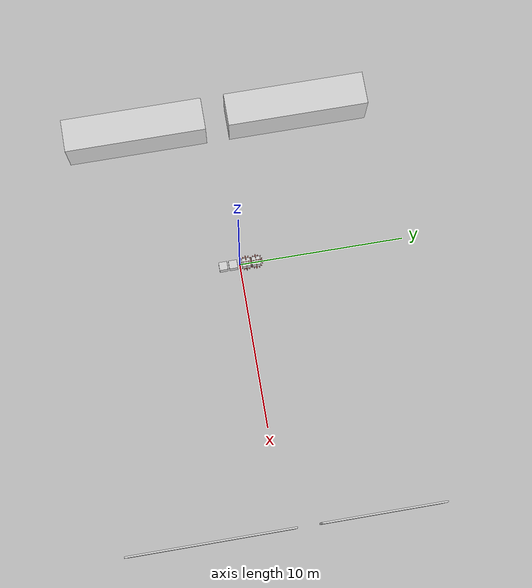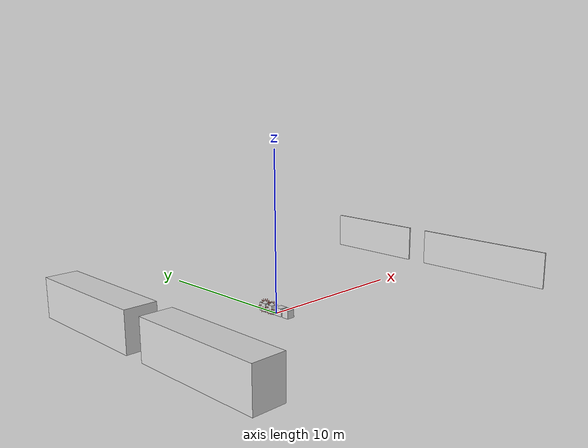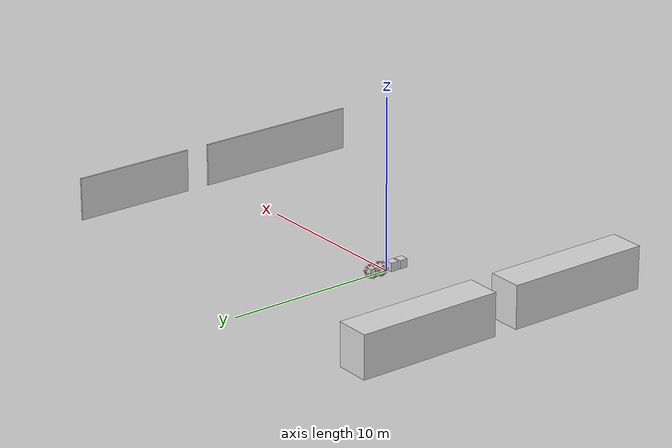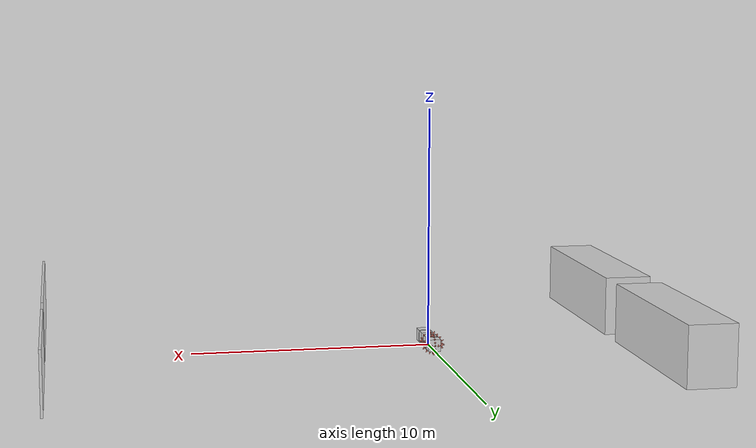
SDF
<?xml version="1.0" ?>
<sdf version="1.6">
  <model name="trap_b_1_n">
    <static>true</static>
    <include>
      <name>b_r</name>
      <uri>model://vis_cue_normal</uri>
      <pose>0 -1 0.25 0 0 0</pose>
    </include>
    <include>
      <name>attract_cue_1</name>
      <uri>model://vis_cue_normal</uri>
      <pose>0 -0.4 0.25 0 0 0</pose>
    </include>
    <include>
      <name>b_l</name>
      <uri>model://vis_cue_repel</uri>
      <pose>0 1 0.25 0 0 0</pose>
    </include>
    <include>
      <name>repel_cue_3</name>
      <uri>model://vis_cue_repel</uri>
      <pose>0 0.4 0.25 0 0 0</pose>
    </include>

    <include>
      <name>gate_m_start</name>
      <uri>model://study_track_gate_m_2</uri>
      <pose>0 0 0 0 0 0</pose>
    </include>

    <include>
      <name>gate_l_end</name>
      <uri>model://study_track_gate_l</uri>
      <pose>19 0 0 0 0 0</pose>
    </include>

  </model>
</sdf>

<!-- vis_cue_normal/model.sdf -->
<sdf version="1.6">
  <model name="vis_cue_normal">
    <static>false</static>
    <pose>0 0 0.25 0 0 0</pose>
    <link name='vis_cue_normal'>
      <inertial>
        <mass>1</mass>
        <inertia>
          <ixx>0.166667</ixx>
          <ixy>0</ixy>
          <ixz>0</ixz>
          <iyy>0.166667</iyy>
          <iyz>0</iyz>
          <izz>0.166667</izz>
        </inertia>
      </inertial>
      <collision name='collision'>
        <geometry>
          <box>
            <size>0.5 0.5 0.5</size>
          </box>
        </geometry>
        <max_contacts>10</max_contacts>
        <surface>
          <contact>
            <ode/>
          </contact>
          <bounce/>
          <friction>
            <torsional>
              <ode/>
            </torsional>
            <ode/>
          </friction>
        </surface>
      </collision>
      <visual name='box_visual'>
        <geometry>
          <box>
            <size>0.5 0.5 0.5</size>
          </box>
        </geometry>
        <material>
          <ambient>0.85 0.85 0.85 1</ambient>
          <diffuse>0.85 0.85 0.85 1</diffuse>
          <specular>0.15 0.15 0.15 1</specular>
          <emissive>0 0 0 0</emissive>
        </material>
      </visual>
      <self_collide>0</self_collide>
      <kinematic>0</kinematic>
    </link>
  </model>
</sdf>

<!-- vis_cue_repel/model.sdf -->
<sdf version="1.6">
  <model name="vis_cue_repel">
    <static>false</static>
    <pose>0 0 0.25 0 0 0</pose>
    <link name='vis_cue_repel'>
      <inertial>
        <mass>1</mass>
        <inertia>
          <ixx>0.166667</ixx>
          <ixy>0</ixy>
          <ixz>0</ixz>
          <iyy>0.166667</iyy>
          <iyz>0</iyz>
          <izz>0.166667</izz>
        </inertia>
      </inertial>
      <collision name='collision'>
        <geometry>
          <box>
            <size>0.5 0.5 0.5</size>
          </box>
        </geometry>
        <max_contacts>10</max_contacts>
        <surface>
          <contact>
            <ode/>
          </contact>
          <bounce/>
          <friction>
            <torsional>
              <ode/>
            </torsional>
            <ode/>
          </friction>
        </surface>
      </collision>
      <visual name='box_visual'>
        <geometry>
          <box>
            <size>0.5 0.5 0.5</size>
          </box>
        </geometry>
        <material>
          <ambient>0.85 0.85 0.85 1</ambient>
          <diffuse>0.85 0.85 0.85 1</diffuse>
          <specular>0.15 0.15 0.15 1</specular>
          <emissive>0 0 0 0</emissive>
        </material>
      </visual>
      <visual name='cue_visual_1'>
        <pose>0 0 0 1.5708 0 1.5708</pose>
        <geometry>
          <mesh>
            <uri>model://vis_cue_repel/meshes/repelling_cue.stl</uri>
            <scale>0.36 0.36 0.36</scale>
          </mesh>
        </geometry>
        <material>
          <ambient>1 0.3 0.2 0.6</ambient>
          <diffuse>1 0.3 0.2 0.6</diffuse>
          <specular>1 0.3 0.2 0.7</specular>
          <emissive>0.5 0 0 0.1</emissive>
        </material>
      </visual>
      <visual name='cue_visual_2'>
        <pose>0 0 0 1.5708 0 0</pose>
        <geometry>
          <mesh>
            <uri>model://vis_cue_repel/meshes/repelling_cue.stl</uri>
            <scale>0.36 0.36 0.36</scale>
          </mesh>
        </geometry>
        <material>
          <ambient>1 0.3 0.2 0.6</ambient>
          <diffuse>1 0.3 0.2 0.6</diffuse>
          <specular>1 0.3 0.2 0.7</specular>
          <emissive>0.5 0 0 0.1</emissive>
        </material>
      </visual>
      <visual name='cue_visual_3'>
        <pose>0 0 0 0 0 0</pose>
        <geometry>
          <mesh>
            <uri>model://vis_cue_repel/meshes/repelling_cue.stl</uri>
            <scale>0.36 0.36 0.36</scale>
          </mesh>
        </geometry>
        <material>
          <ambient>1 0.3 0.2 0.6</ambient>
          <diffuse>1 0.3 0.2 0.6</diffuse>
          <specular>1 0.3 0.2 0.7</specular>
          <emissive>0.5 0 0 0.1</emissive>
        </material>
      </visual>
      <self_collide>0</self_collide>
      <kinematic>0</kinematic>
    </link>
  </model>
</sdf>

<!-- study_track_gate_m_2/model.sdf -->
<sdf version="1.6">
  <model name="study_track_gate_m_2">
    <static>true</static>

    <link name='wall_l'>
      <pose>-9 -4.95 1.25 0 0 0</pose>
      <collision name='collision'>
        <geometry>
          <box>
            <size>2 8.5 2.5</size>
          </box>
        </geometry>
      </collision>
      <visual name='box_visual'>
        <geometry>
          <box>
            <size>2 8.5 2.5</size>
          </box>
        </geometry>
        <material>
          <ambient>0.85 0.85 0.85 1</ambient>
          <diffuse>0.85 0.85 0.85 1</diffuse>
          <specular>0.15 0.15 0.15 1</specular>
          <emissive>0 0 0 0</emissive>
        </material>
      </visual>
    </link>

    <link name='wall_r'>
      <pose>-9 4.95 1.25 0 0 0</pose>
      <collision name='collision'>
        <geometry>
          <box>
            <size>2 8.5 2.5</size>
          </box>
        </geometry>
      </collision>
      <visual name='box_visual'>
        <geometry>
          <box>
            <size>2 8.5 2.5</size>
          </box>
        </geometry>
        <material>
          <ambient>0.85 0.85 0.85 1</ambient>
          <diffuse>0.85 0.85 0.85 1</diffuse>
          <specular>0.15 0.15 0.15 1</specular>
          <emissive>0 0 0 0</emissive>
        </material>
      </visual>
    </link>

  </model>
</sdf>

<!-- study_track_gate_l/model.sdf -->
<sdf version="1.6">
  <model name="study_track_gate_l">
    <static>true</static>

    <link name='wall_l'>
      <pose>-3 5.6 1.25 0 0 0</pose>
      <collision name='collision'>
        <geometry>
          <box>
            <size>0.1 7.2 2.5</size>
          </box>
        </geometry>
      </collision>
      <visual name='box_visual'>
        <geometry>
          <box>
            <size>0.1 7.2 2.5</size>
          </box>
        </geometry>
        <material>
          <ambient>0.85 0.85 0.85 1</ambient>
          <diffuse>0.85 0.85 0.85 1</diffuse>
          <specular>0.15 0.15 0.15 1</specular>
          <emissive>0 0 0 0</emissive>
        </material>
      </visual>
    </link>

    <link name='wall_r'>
      <pose>-3 -4.3 1.25 0 0 0</pose>
      <collision name='collision'>
        <geometry>
          <box>
            <size>0.1 9.8 2.5</size>
          </box>
        </geometry>
      </collision>
      <visual name='box_visual'>
        <geometry>
          <box>
            <size>0.1 9.8 2.5</size>
          </box>
        </geometry>
        <material>
          <ambient>0.85 0.85 0.85 1</ambient>
          <diffuse>0.85 0.85 0.85 1</diffuse>
          <specular>0.15 0.15 0.15 1</specular>
          <emissive>0 0 0 0</emissive>
        </material>
      </visual>
    </link>

  </model>
</sdf>
